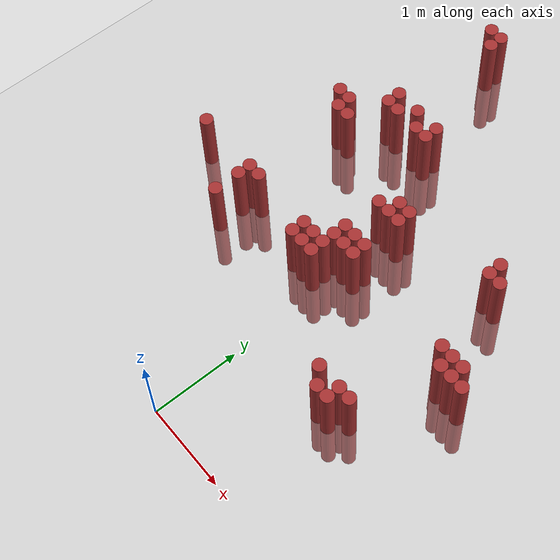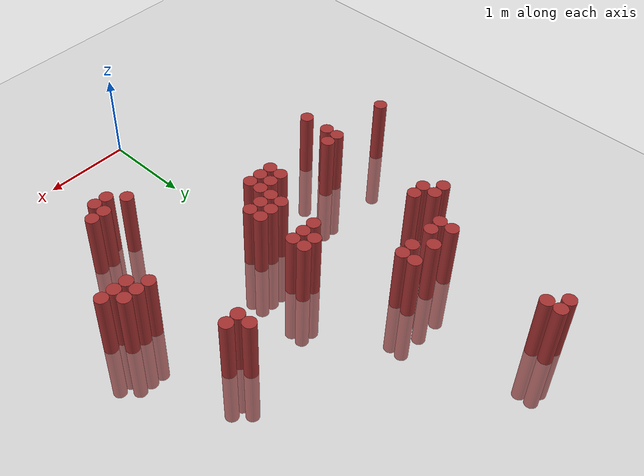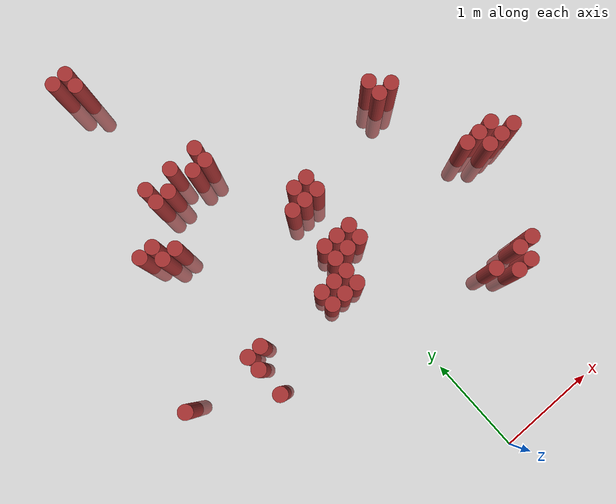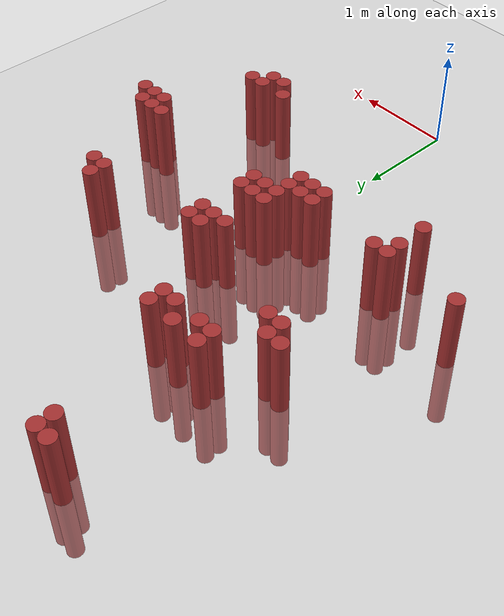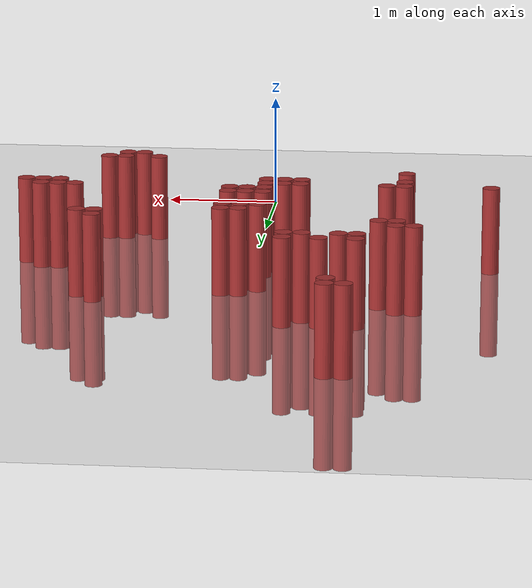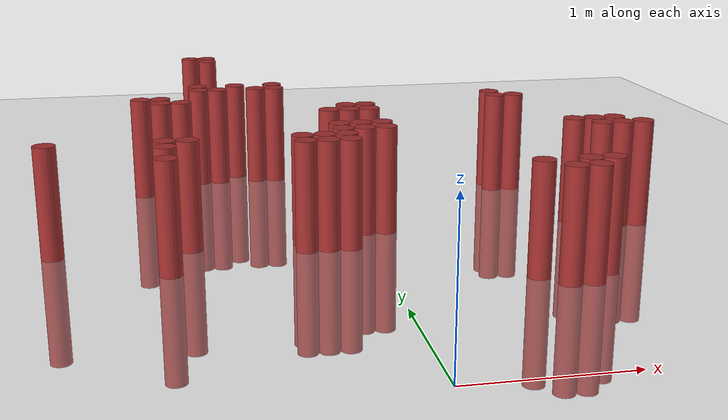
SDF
<sdf version="1.6">
 <world name="default">
  <model name="ground_plane">
   <static>1</static>
   <link name="link">
    <collision name="collision">
     <geometry><plane><normal>0 0 1</normal><size>100 100</size></plane></geometry>
     <surface><friction><ode><mu>100</mu><mu2>50</mu2></ode></friction></surface>
    </collision>
    <visual name="visual">
     <cast_shadows>0</cast_shadows>
     <geometry><plane><normal>0 0 1</normal><size>100 100</size></plane></geometry>
     <material>
      <script><uri>file://media/materials/scripts/gazebo.material</uri><name>Gazebo/Grey</name></script>
     </material>
    </visual>
   </link>
  </model>
  <model name="unit_cylinder_308">
   <static>1</static>
   <pose>-2.075000 2.275000 0.000000 0.000000 0.000000 0.000000</pose>
   <link name="link">
    <inertial>
     <mass>1</mass>
     <inertia><ixx>0.145833</ixx><ixy>0</ixy><ixz>0</ixz><iyy>0.145833</iyy><iyz>0</iyz><izz>0.125</izz></inertia>
    </inertial>
    <collision name="collision">
     <geometry><cylinder><radius>0.075000</radius><length>1.5</length></cylinder></geometry>
    </collision>
    <visual name="visual">
     <geometry><cylinder><radius>0.075000</radius><length>1.5</length></cylinder></geometry>
     <material>
      <ambient>0.648000 0.192000 0.192000 1</ambient>
      <diffuse>0.648000 0.192000 0.192000 1</diffuse>
     </material>
     <material>
      <script><name>Gazebo/Grey</name><uri>file://media/materials/scripts/gazebo.material</uri></script>
     </material>
    </visual>
   </link>
  </model>
  <model name="unit_cylinder_317">
   <static>1</static>
   <pose>-1.475000 3.625000 0.000000 0.000000 0.000000 0.000000</pose>
   <link name="link">
    <inertial>
     <mass>1</mass>
     <inertia><ixx>0.145833</ixx><ixy>0</ixy><ixz>0</ixz><iyy>0.145833</iyy><iyz>0</iyz><izz>0.125</izz></inertia>
    </inertial>
    <collision name="collision">
     <geometry><cylinder><radius>0.075000</radius><length>1.5</length></cylinder></geometry>
    </collision>
    <visual name="visual">
     <geometry><cylinder><radius>0.075000</radius><length>1.5</length></cylinder></geometry>
     <material>
      <ambient>0.648000 0.192000 0.192000 1</ambient>
      <diffuse>0.648000 0.192000 0.192000 1</diffuse>
     </material>
     <material>
      <script><name>Gazebo/Grey</name><uri>file://media/materials/scripts/gazebo.material</uri></script>
     </material>
    </visual>
   </link>
  </model>
  <model name="unit_cylinder_319">
   <static>1</static>
   <pose>-1.325000 1.825000 0.000000 0.000000 0.000000 0.000000</pose>
   <link name="link">
    <inertial>
     <mass>1</mass>
     <inertia><ixx>0.145833</ixx><ixy>0</ixy><ixz>0</ixz><iyy>0.145833</iyy><iyz>0</iyz><izz>0.125</izz></inertia>
    </inertial>
    <collision name="collision">
     <geometry><cylinder><radius>0.075000</radius><length>1.5</length></cylinder></geometry>
    </collision>
    <visual name="visual">
     <geometry><cylinder><radius>0.075000</radius><length>1.5</length></cylinder></geometry>
     <material>
      <ambient>0.648000 0.192000 0.192000 1</ambient>
      <diffuse>0.648000 0.192000 0.192000 1</diffuse>
     </material>
     <material>
      <script><name>Gazebo/Grey</name><uri>file://media/materials/scripts/gazebo.material</uri></script>
     </material>
    </visual>
   </link>
  </model>
  <model name="unit_cylinder_320">
   <static>1</static>
   <pose>-1.325000 2.125000 0.000000 0.000000 0.000000 0.000000</pose>
   <link name="link">
    <inertial>
     <mass>1</mass>
     <inertia><ixx>0.145833</ixx><ixy>0</ixy><ixz>0</ixz><iyy>0.145833</iyy><iyz>0</iyz><izz>0.125</izz></inertia>
    </inertial>
    <collision name="collision">
     <geometry><cylinder><radius>0.075000</radius><length>1.5</length></cylinder></geometry>
    </collision>
    <visual name="visual">
     <geometry><cylinder><radius>0.075000</radius><length>1.5</length></cylinder></geometry>
     <material>
      <ambient>0.648000 0.192000 0.192000 1</ambient>
      <diffuse>0.648000 0.192000 0.192000 1</diffuse>
     </material>
     <material>
      <script><name>Gazebo/Grey</name><uri>file://media/materials/scripts/gazebo.material</uri></script>
     </material>
    </visual>
   </link>
  </model>
  <model name="unit_cylinder_321">
   <static>1</static>
   <pose>-1.325000 2.275000 0.000000 0.000000 0.000000 0.000000</pose>
   <link name="link">
    <inertial>
     <mass>1</mass>
     <inertia><ixx>0.145833</ixx><ixy>0</ixy><ixz>0</ixz><iyy>0.145833</iyy><iyz>0</iyz><izz>0.125</izz></inertia>
    </inertial>
    <collision name="collision">
     <geometry><cylinder><radius>0.075000</radius><length>1.5</length></cylinder></geometry>
    </collision>
    <visual name="visual">
     <geometry><cylinder><radius>0.075000</radius><length>1.5</length></cylinder></geometry>
     <material>
      <ambient>0.648000 0.192000 0.192000 1</ambient>
      <diffuse>0.648000 0.192000 0.192000 1</diffuse>
     </material>
     <material>
      <script><name>Gazebo/Grey</name><uri>file://media/materials/scripts/gazebo.material</uri></script>
     </material>
    </visual>
   </link>
  </model>
  <model name="unit_cylinder_322">
   <static>1</static>
   <pose>-1.325000 3.475000 0.000000 0.000000 0.000000 0.000000</pose>
   <link name="link">
    <inertial>
     <mass>1</mass>
     <inertia><ixx>0.145833</ixx><ixy>0</ixy><ixz>0</ixz><iyy>0.145833</iyy><iyz>0</iyz><izz>0.125</izz></inertia>
    </inertial>
    <collision name="collision">
     <geometry><cylinder><radius>0.075000</radius><length>1.5</length></cylinder></geometry>
    </collision>
    <visual name="visual">
     <geometry><cylinder><radius>0.075000</radius><length>1.5</length></cylinder></geometry>
     <material>
      <ambient>0.648000 0.192000 0.192000 1</ambient>
      <diffuse>0.648000 0.192000 0.192000 1</diffuse>
     </material>
     <material>
      <script><name>Gazebo/Grey</name><uri>file://media/materials/scripts/gazebo.material</uri></script>
     </material>
    </visual>
   </link>
  </model>
  <model name="unit_cylinder_323">
   <static>1</static>
   <pose>-1.325000 3.625000 0.000000 0.000000 0.000000 0.000000</pose>
   <link name="link">
    <inertial>
     <mass>1</mass>
     <inertia><ixx>0.145833</ixx><ixy>0</ixy><ixz>0</ixz><iyy>0.145833</iyy><iyz>0</iyz><izz>0.125</izz></inertia>
    </inertial>
    <collision name="collision">
     <geometry><cylinder><radius>0.075000</radius><length>1.5</length></cylinder></geometry>
    </collision>
    <visual name="visual">
     <geometry><cylinder><radius>0.075000</radius><length>1.5</length></cylinder></geometry>
     <material>
      <ambient>0.648000 0.192000 0.192000 1</ambient>
      <diffuse>0.648000 0.192000 0.192000 1</diffuse>
     </material>
     <material>
      <script><name>Gazebo/Grey</name><uri>file://media/materials/scripts/gazebo.material</uri></script>
     </material>
    </visual>
   </link>
  </model>
  <model name="unit_cylinder_326">
   <static>1</static>
   <pose>-1.175000 2.275000 0.000000 0.000000 0.000000 0.000000</pose>
   <link name="link">
    <inertial>
     <mass>1</mass>
     <inertia><ixx>0.145833</ixx><ixy>0</ixy><ixz>0</ixz><iyy>0.145833</iyy><iyz>0</iyz><izz>0.125</izz></inertia>
    </inertial>
    <collision name="collision">
     <geometry><cylinder><radius>0.075000</radius><length>1.5</length></cylinder></geometry>
    </collision>
    <visual name="visual">
     <geometry><cylinder><radius>0.075000</radius><length>1.5</length></cylinder></geometry>
     <material>
      <ambient>0.648000 0.192000 0.192000 1</ambient>
      <diffuse>0.648000 0.192000 0.192000 1</diffuse>
     </material>
     <material>
      <script><name>Gazebo/Grey</name><uri>file://media/materials/scripts/gazebo.material</uri></script>
     </material>
    </visual>
   </link>
  </model>
  <model name="unit_cylinder_327">
   <static>1</static>
   <pose>-1.175000 3.475000 0.000000 0.000000 0.000000 0.000000</pose>
   <link name="link">
    <inertial>
     <mass>1</mass>
     <inertia><ixx>0.145833</ixx><ixy>0</ixy><ixz>0</ixz><iyy>0.145833</iyy><iyz>0</iyz><izz>0.125</izz></inertia>
    </inertial>
    <collision name="collision">
     <geometry><cylinder><radius>0.075000</radius><length>1.5</length></cylinder></geometry>
    </collision>
    <visual name="visual">
     <geometry><cylinder><radius>0.075000</radius><length>1.5</length></cylinder></geometry>
     <material>
      <ambient>0.648000 0.192000 0.192000 1</ambient>
      <diffuse>0.648000 0.192000 0.192000 1</diffuse>
     </material>
     <material>
      <script><name>Gazebo/Grey</name><uri>file://media/materials/scripts/gazebo.material</uri></script>
     </material>
    </visual>
   </link>
  </model>
  <model name="unit_cylinder_328">
   <static>1</static>
   <pose>-1.025000 3.925000 0.000000 0.000000 0.000000 0.000000</pose>
   <link name="link">
    <inertial>
     <mass>1</mass>
     <inertia><ixx>0.145833</ixx><ixy>0</ixy><ixz>0</ixz><iyy>0.145833</iyy><iyz>0</iyz><izz>0.125</izz></inertia>
    </inertial>
    <collision name="collision">
     <geometry><cylinder><radius>0.075000</radius><length>1.5</length></cylinder></geometry>
    </collision>
    <visual name="visual">
     <geometry><cylinder><radius>0.075000</radius><length>1.5</length></cylinder></geometry>
     <material>
      <ambient>0.648000 0.192000 0.192000 1</ambient>
      <diffuse>0.648000 0.192000 0.192000 1</diffuse>
     </material>
     <material>
      <script><name>Gazebo/Grey</name><uri>file://media/materials/scripts/gazebo.material</uri></script>
     </material>
    </visual>
   </link>
  </model>
  <model name="unit_cylinder_329">
   <static>1</static>
   <pose>-1.025000 4.075000 0.000000 0.000000 0.000000 0.000000</pose>
   <link name="link">
    <inertial>
     <mass>1</mass>
     <inertia><ixx>0.145833</ixx><ixy>0</ixy><ixz>0</ixz><iyy>0.145833</iyy><iyz>0</iyz><izz>0.125</izz></inertia>
    </inertial>
    <collision name="collision">
     <geometry><cylinder><radius>0.075000</radius><length>1.5</length></cylinder></geometry>
    </collision>
    <visual name="visual">
     <geometry><cylinder><radius>0.075000</radius><length>1.5</length></cylinder></geometry>
     <material>
      <ambient>0.648000 0.192000 0.192000 1</ambient>
      <diffuse>0.648000 0.192000 0.192000 1</diffuse>
     </material>
     <material>
      <script><name>Gazebo/Grey</name><uri>file://media/materials/scripts/gazebo.material</uri></script>
     </material>
    </visual>
   </link>
  </model>
  <model name="unit_cylinder_330">
   <static>1</static>
   <pose>-1.025000 5.425000 0.000000 0.000000 0.000000 0.000000</pose>
   <link name="link">
    <inertial>
     <mass>1</mass>
     <inertia><ixx>0.145833</ixx><ixy>0</ixy><ixz>0</ixz><iyy>0.145833</iyy><iyz>0</iyz><izz>0.125</izz></inertia>
    </inertial>
    <collision name="collision">
     <geometry><cylinder><radius>0.075000</radius><length>1.5</length></cylinder></geometry>
    </collision>
    <visual name="visual">
     <geometry><cylinder><radius>0.075000</radius><length>1.5</length></cylinder></geometry>
     <material>
      <ambient>0.648000 0.192000 0.192000 1</ambient>
      <diffuse>0.648000 0.192000 0.192000 1</diffuse>
     </material>
     <material>
      <script><name>Gazebo/Grey</name><uri>file://media/materials/scripts/gazebo.material</uri></script>
     </material>
    </visual>
   </link>
  </model>
  <model name="unit_cylinder_331">
   <static>1</static>
   <pose>-0.875000 3.925000 0.000000 0.000000 0.000000 0.000000</pose>
   <link name="link">
    <inertial>
     <mass>1</mass>
     <inertia><ixx>0.145833</ixx><ixy>0</ixy><ixz>0</ixz><iyy>0.145833</iyy><iyz>0</iyz><izz>0.125</izz></inertia>
    </inertial>
    <collision name="collision">
     <geometry><cylinder><radius>0.075000</radius><length>1.5</length></cylinder></geometry>
    </collision>
    <visual name="visual">
     <geometry><cylinder><radius>0.075000</radius><length>1.5</length></cylinder></geometry>
     <material>
      <ambient>0.648000 0.192000 0.192000 1</ambient>
      <diffuse>0.648000 0.192000 0.192000 1</diffuse>
     </material>
     <material>
      <script><name>Gazebo/Grey</name><uri>file://media/materials/scripts/gazebo.material</uri></script>
     </material>
    </visual>
   </link>
  </model>
  <model name="unit_cylinder_332">
   <static>1</static>
   <pose>-0.875000 5.275000 0.000000 0.000000 0.000000 0.000000</pose>
   <link name="link">
    <inertial>
     <mass>1</mass>
     <inertia><ixx>0.145833</ixx><ixy>0</ixy><ixz>0</ixz><iyy>0.145833</iyy><iyz>0</iyz><izz>0.125</izz></inertia>
    </inertial>
    <collision name="collision">
     <geometry><cylinder><radius>0.075000</radius><length>1.5</length></cylinder></geometry>
    </collision>
    <visual name="visual">
     <geometry><cylinder><radius>0.075000</radius><length>1.5</length></cylinder></geometry>
     <material>
      <ambient>0.648000 0.192000 0.192000 1</ambient>
      <diffuse>0.648000 0.192000 0.192000 1</diffuse>
     </material>
     <material>
      <script><name>Gazebo/Grey</name><uri>file://media/materials/scripts/gazebo.material</uri></script>
     </material>
    </visual>
   </link>
  </model>
  <model name="unit_cylinder_333">
   <static>1</static>
   <pose>-0.875000 5.425000 0.000000 0.000000 0.000000 0.000000</pose>
   <link name="link">
    <inertial>
     <mass>1</mass>
     <inertia><ixx>0.145833</ixx><ixy>0</ixy><ixz>0</ixz><iyy>0.145833</iyy><iyz>0</iyz><izz>0.125</izz></inertia>
    </inertial>
    <collision name="collision">
     <geometry><cylinder><radius>0.075000</radius><length>1.5</length></cylinder></geometry>
    </collision>
    <visual name="visual">
     <geometry><cylinder><radius>0.075000</radius><length>1.5</length></cylinder></geometry>
     <material>
      <ambient>0.648000 0.192000 0.192000 1</ambient>
      <diffuse>0.648000 0.192000 0.192000 1</diffuse>
     </material>
     <material>
      <script><name>Gazebo/Grey</name><uri>file://media/materials/scripts/gazebo.material</uri></script>
     </material>
    </visual>
   </link>
  </model>
  <model name="unit_cylinder_334">
   <static>1</static>
   <pose>-0.725000 4.075000 0.000000 0.000000 0.000000 0.000000</pose>
   <link name="link">
    <inertial>
     <mass>1</mass>
     <inertia><ixx>0.145833</ixx><ixy>0</ixy><ixz>0</ixz><iyy>0.145833</iyy><iyz>0</iyz><izz>0.125</izz></inertia>
    </inertial>
    <collision name="collision">
     <geometry><cylinder><radius>0.075000</radius><length>1.5</length></cylinder></geometry>
    </collision>
    <visual name="visual">
     <geometry><cylinder><radius>0.075000</radius><length>1.5</length></cylinder></geometry>
     <material>
      <ambient>0.648000 0.192000 0.192000 1</ambient>
      <diffuse>0.648000 0.192000 0.192000 1</diffuse>
     </material>
     <material>
      <script><name>Gazebo/Grey</name><uri>file://media/materials/scripts/gazebo.material</uri></script>
     </material>
    </visual>
   </link>
  </model>
  <model name="unit_cylinder_336">
   <static>1</static>
   <pose>-0.575000 3.925000 0.000000 0.000000 0.000000 0.000000</pose>
   <link name="link">
    <inertial>
     <mass>1</mass>
     <inertia><ixx>0.145833</ixx><ixy>0</ixy><ixz>0</ixz><iyy>0.145833</iyy><iyz>0</iyz><izz>0.125</izz></inertia>
    </inertial>
    <collision name="collision">
     <geometry><cylinder><radius>0.075000</radius><length>1.5</length></cylinder></geometry>
    </collision>
    <visual name="visual">
     <geometry><cylinder><radius>0.075000</radius><length>1.5</length></cylinder></geometry>
     <material>
      <ambient>0.648000 0.192000 0.192000 1</ambient>
      <diffuse>0.648000 0.192000 0.192000 1</diffuse>
     </material>
     <material>
      <script><name>Gazebo/Grey</name><uri>file://media/materials/scripts/gazebo.material</uri></script>
     </material>
    </visual>
   </link>
  </model>
  <model name="unit_cylinder_339">
   <static>1</static>
   <pose>-0.425000 2.125000 0.000000 0.000000 0.000000 0.000000</pose>
   <link name="link">
    <inertial>
     <mass>1</mass>
     <inertia><ixx>0.145833</ixx><ixy>0</ixy><ixz>0</ixz><iyy>0.145833</iyy><iyz>0</iyz><izz>0.125</izz></inertia>
    </inertial>
    <collision name="collision">
     <geometry><cylinder><radius>0.075000</radius><length>1.5</length></cylinder></geometry>
    </collision>
    <visual name="visual">
     <geometry><cylinder><radius>0.075000</radius><length>1.5</length></cylinder></geometry>
     <material>
      <ambient>0.648000 0.192000 0.192000 1</ambient>
      <diffuse>0.648000 0.192000 0.192000 1</diffuse>
     </material>
     <material>
      <script><name>Gazebo/Grey</name><uri>file://media/materials/scripts/gazebo.material</uri></script>
     </material>
    </visual>
   </link>
  </model>
  <model name="unit_cylinder_340">
   <static>1</static>
   <pose>-0.425000 2.275000 0.000000 0.000000 0.000000 0.000000</pose>
   <link name="link">
    <inertial>
     <mass>1</mass>
     <inertia><ixx>0.145833</ixx><ixy>0</ixy><ixz>0</ixz><iyy>0.145833</iyy><iyz>0</iyz><izz>0.125</izz></inertia>
    </inertial>
    <collision name="collision">
     <geometry><cylinder><radius>0.075000</radius><length>1.5</length></cylinder></geometry>
    </collision>
    <visual name="visual">
     <geometry><cylinder><radius>0.075000</radius><length>1.5</length></cylinder></geometry>
     <material>
      <ambient>0.648000 0.192000 0.192000 1</ambient>
      <diffuse>0.648000 0.192000 0.192000 1</diffuse>
     </material>
     <material>
      <script><name>Gazebo/Grey</name><uri>file://media/materials/scripts/gazebo.material</uri></script>
     </material>
    </visual>
   </link>
  </model>
  <model name="unit_cylinder_341">
   <static>1</static>
   <pose>-0.425000 3.925000 0.000000 0.000000 0.000000 0.000000</pose>
   <link name="link">
    <inertial>
     <mass>1</mass>
     <inertia><ixx>0.145833</ixx><ixy>0</ixy><ixz>0</ixz><iyy>0.145833</iyy><iyz>0</iyz><izz>0.125</izz></inertia>
    </inertial>
    <collision name="collision">
     <geometry><cylinder><radius>0.075000</radius><length>1.5</length></cylinder></geometry>
    </collision>
    <visual name="visual">
     <geometry><cylinder><radius>0.075000</radius><length>1.5</length></cylinder></geometry>
     <material>
      <ambient>0.648000 0.192000 0.192000 1</ambient>
      <diffuse>0.648000 0.192000 0.192000 1</diffuse>
     </material>
     <material>
      <script><name>Gazebo/Grey</name><uri>file://media/materials/scripts/gazebo.material</uri></script>
     </material>
    </visual>
   </link>
  </model>
  <model name="unit_cylinder_342">
   <static>1</static>
   <pose>-0.425000 4.075000 0.000000 0.000000 0.000000 0.000000</pose>
   <link name="link">
    <inertial>
     <mass>1</mass>
     <inertia><ixx>0.145833</ixx><ixy>0</ixy><ixz>0</ixz><iyy>0.145833</iyy><iyz>0</iyz><izz>0.125</izz></inertia>
    </inertial>
    <collision name="collision">
     <geometry><cylinder><radius>0.075000</radius><length>1.5</length></cylinder></geometry>
    </collision>
    <visual name="visual">
     <geometry><cylinder><radius>0.075000</radius><length>1.5</length></cylinder></geometry>
     <material>
      <ambient>0.648000 0.192000 0.192000 1</ambient>
      <diffuse>0.648000 0.192000 0.192000 1</diffuse>
     </material>
     <material>
      <script><name>Gazebo/Grey</name><uri>file://media/materials/scripts/gazebo.material</uri></script>
     </material>
    </visual>
   </link>
  </model>
  <model name="unit_cylinder_344">
   <static>1</static>
   <pose>-0.275000 2.125000 0.000000 0.000000 0.000000 0.000000</pose>
   <link name="link">
    <inertial>
     <mass>1</mass>
     <inertia><ixx>0.145833</ixx><ixy>0</ixy><ixz>0</ixz><iyy>0.145833</iyy><iyz>0</iyz><izz>0.125</izz></inertia>
    </inertial>
    <collision name="collision">
     <geometry><cylinder><radius>0.075000</radius><length>1.5</length></cylinder></geometry>
    </collision>
    <visual name="visual">
     <geometry><cylinder><radius>0.075000</radius><length>1.5</length></cylinder></geometry>
     <material>
      <ambient>0.648000 0.192000 0.192000 1</ambient>
      <diffuse>0.648000 0.192000 0.192000 1</diffuse>
     </material>
     <material>
      <script><name>Gazebo/Grey</name><uri>file://media/materials/scripts/gazebo.material</uri></script>
     </material>
    </visual>
   </link>
  </model>
  <model name="unit_cylinder_345">
   <static>1</static>
   <pose>-0.275000 2.275000 0.000000 0.000000 0.000000 0.000000</pose>
   <link name="link">
    <inertial>
     <mass>1</mass>
     <inertia><ixx>0.145833</ixx><ixy>0</ixy><ixz>0</ixz><iyy>0.145833</iyy><iyz>0</iyz><izz>0.125</izz></inertia>
    </inertial>
    <collision name="collision">
     <geometry><cylinder><radius>0.075000</radius><length>1.5</length></cylinder></geometry>
    </collision>
    <visual name="visual">
     <geometry><cylinder><radius>0.075000</radius><length>1.5</length></cylinder></geometry>
     <material>
      <ambient>0.648000 0.192000 0.192000 1</ambient>
      <diffuse>0.648000 0.192000 0.192000 1</diffuse>
     </material>
     <material>
      <script><name>Gazebo/Grey</name><uri>file://media/materials/scripts/gazebo.material</uri></script>
     </material>
    </visual>
   </link>
  </model>
  <model name="unit_cylinder_349">
   <static>1</static>
   <pose>-0.125000 2.125000 0.000000 0.000000 0.000000 0.000000</pose>
   <link name="link">
    <inertial>
     <mass>1</mass>
     <inertia><ixx>0.145833</ixx><ixy>0</ixy><ixz>0</ixz><iyy>0.145833</iyy><iyz>0</iyz><izz>0.125</izz></inertia>
    </inertial>
    <collision name="collision">
     <geometry><cylinder><radius>0.075000</radius><length>1.5</length></cylinder></geometry>
    </collision>
    <visual name="visual">
     <geometry><cylinder><radius>0.075000</radius><length>1.5</length></cylinder></geometry>
     <material>
      <ambient>0.648000 0.192000 0.192000 1</ambient>
      <diffuse>0.648000 0.192000 0.192000 1</diffuse>
     </material>
     <material>
      <script><name>Gazebo/Grey</name><uri>file://media/materials/scripts/gazebo.material</uri></script>
     </material>
    </visual>
   </link>
  </model>
  <model name="unit_cylinder_350">
   <static>1</static>
   <pose>-0.125000 2.275000 0.000000 0.000000 0.000000 0.000000</pose>
   <link name="link">
    <inertial>
     <mass>1</mass>
     <inertia><ixx>0.145833</ixx><ixy>0</ixy><ixz>0</ixz><iyy>0.145833</iyy><iyz>0</iyz><izz>0.125</izz></inertia>
    </inertial>
    <collision name="collision">
     <geometry><cylinder><radius>0.075000</radius><length>1.5</length></cylinder></geometry>
    </collision>
    <visual name="visual">
     <geometry><cylinder><radius>0.075000</radius><length>1.5</length></cylinder></geometry>
     <material>
      <ambient>0.648000 0.192000 0.192000 1</ambient>
      <diffuse>0.648000 0.192000 0.192000 1</diffuse>
     </material>
     <material>
      <script><name>Gazebo/Grey</name><uri>file://media/materials/scripts/gazebo.material</uri></script>
     </material>
    </visual>
   </link>
  </model>
  <model name="unit_cylinder_351">
   <static>1</static>
   <pose>-0.125000 2.425000 0.000000 0.000000 0.000000 0.000000</pose>
   <link name="link">
    <inertial>
     <mass>1</mass>
     <inertia><ixx>0.145833</ixx><ixy>0</ixy><ixz>0</ixz><iyy>0.145833</iyy><iyz>0</iyz><izz>0.125</izz></inertia>
    </inertial>
    <collision name="collision">
     <geometry><cylinder><radius>0.075000</radius><length>1.5</length></cylinder></geometry>
    </collision>
    <visual name="visual">
     <geometry><cylinder><radius>0.075000</radius><length>1.5</length></cylinder></geometry>
     <material>
      <ambient>0.648000 0.192000 0.192000 1</ambient>
      <diffuse>0.648000 0.192000 0.192000 1</diffuse>
     </material>
     <material>
      <script><name>Gazebo/Grey</name><uri>file://media/materials/scripts/gazebo.material</uri></script>
     </material>
    </visual>
   </link>
  </model>
  <model name="unit_cylinder_352">
   <static>1</static>
   <pose>-0.125000 2.575000 0.000000 0.000000 0.000000 0.000000</pose>
   <link name="link">
    <inertial>
     <mass>1</mass>
     <inertia><ixx>0.145833</ixx><ixy>0</ixy><ixz>0</ixz><iyy>0.145833</iyy><iyz>0</iyz><izz>0.125</izz></inertia>
    </inertial>
    <collision name="collision">
     <geometry><cylinder><radius>0.075000</radius><length>1.5</length></cylinder></geometry>
    </collision>
    <visual name="visual">
     <geometry><cylinder><radius>0.075000</radius><length>1.5</length></cylinder></geometry>
     <material>
      <ambient>0.648000 0.192000 0.192000 1</ambient>
      <diffuse>0.648000 0.192000 0.192000 1</diffuse>
     </material>
     <material>
      <script><name>Gazebo/Grey</name><uri>file://media/materials/scripts/gazebo.material</uri></script>
     </material>
    </visual>
   </link>
  </model>
  <model name="unit_cylinder_353">
   <static>1</static>
   <pose>-0.125000 3.025000 0.000000 0.000000 0.000000 0.000000</pose>
   <link name="link">
    <inertial>
     <mass>1</mass>
     <inertia><ixx>0.145833</ixx><ixy>0</ixy><ixz>0</ixz><iyy>0.145833</iyy><iyz>0</iyz><izz>0.125</izz></inertia>
    </inertial>
    <collision name="collision">
     <geometry><cylinder><radius>0.075000</radius><length>1.5</length></cylinder></geometry>
    </collision>
    <visual name="visual">
     <geometry><cylinder><radius>0.075000</radius><length>1.5</length></cylinder></geometry>
     <material>
      <ambient>0.648000 0.192000 0.192000 1</ambient>
      <diffuse>0.648000 0.192000 0.192000 1</diffuse>
     </material>
     <material>
      <script><name>Gazebo/Grey</name><uri>file://media/materials/scripts/gazebo.material</uri></script>
     </material>
    </visual>
   </link>
  </model>
  <model name="unit_cylinder_356">
   <static>1</static>
   <pose>0.025000 2.425000 0.000000 0.000000 0.000000 0.000000</pose>
   <link name="link">
    <inertial>
     <mass>1</mass>
     <inertia><ixx>0.145833</ixx><ixy>0</ixy><ixz>0</ixz><iyy>0.145833</iyy><iyz>0</iyz><izz>0.125</izz></inertia>
    </inertial>
    <collision name="collision">
     <geometry><cylinder><radius>0.075000</radius><length>1.5</length></cylinder></geometry>
    </collision>
    <visual name="visual">
     <geometry><cylinder><radius>0.075000</radius><length>1.5</length></cylinder></geometry>
     <material>
      <ambient>0.648000 0.192000 0.192000 1</ambient>
      <diffuse>0.648000 0.192000 0.192000 1</diffuse>
     </material>
     <material>
      <script><name>Gazebo/Grey</name><uri>file://media/materials/scripts/gazebo.material</uri></script>
     </material>
    </visual>
   </link>
  </model>
  <model name="unit_cylinder_357">
   <static>1</static>
   <pose>0.025000 2.575000 0.000000 0.000000 0.000000 0.000000</pose>
   <link name="link">
    <inertial>
     <mass>1</mass>
     <inertia><ixx>0.145833</ixx><ixy>0</ixy><ixz>0</ixz><iyy>0.145833</iyy><iyz>0</iyz><izz>0.125</izz></inertia>
    </inertial>
    <collision name="collision">
     <geometry><cylinder><radius>0.075000</radius><length>1.5</length></cylinder></geometry>
    </collision>
    <visual name="visual">
     <geometry><cylinder><radius>0.075000</radius><length>1.5</length></cylinder></geometry>
     <material>
      <ambient>0.648000 0.192000 0.192000 1</ambient>
      <diffuse>0.648000 0.192000 0.192000 1</diffuse>
     </material>
     <material>
      <script><name>Gazebo/Grey</name><uri>file://media/materials/scripts/gazebo.material</uri></script>
     </material>
    </visual>
   </link>
  </model>
  <model name="unit_cylinder_358">
   <static>1</static>
   <pose>0.025000 3.025000 0.000000 0.000000 0.000000 0.000000</pose>
   <link name="link">
    <inertial>
     <mass>1</mass>
     <inertia><ixx>0.145833</ixx><ixy>0</ixy><ixz>0</ixz><iyy>0.145833</iyy><iyz>0</iyz><izz>0.125</izz></inertia>
    </inertial>
    <collision name="collision">
     <geometry><cylinder><radius>0.075000</radius><length>1.5</length></cylinder></geometry>
    </collision>
    <visual name="visual">
     <geometry><cylinder><radius>0.075000</radius><length>1.5</length></cylinder></geometry>
     <material>
      <ambient>0.648000 0.192000 0.192000 1</ambient>
      <diffuse>0.648000 0.192000 0.192000 1</diffuse>
     </material>
     <material>
      <script><name>Gazebo/Grey</name><uri>file://media/materials/scripts/gazebo.material</uri></script>
     </material>
    </visual>
   </link>
  </model>
  <model name="unit_cylinder_359">
   <static>1</static>
   <pose>0.025000 3.175000 0.000000 0.000000 0.000000 0.000000</pose>
   <link name="link">
    <inertial>
     <mass>1</mass>
     <inertia><ixx>0.145833</ixx><ixy>0</ixy><ixz>0</ixz><iyy>0.145833</iyy><iyz>0</iyz><izz>0.125</izz></inertia>
    </inertial>
    <collision name="collision">
     <geometry><cylinder><radius>0.075000</radius><length>1.5</length></cylinder></geometry>
    </collision>
    <visual name="visual">
     <geometry><cylinder><radius>0.075000</radius><length>1.5</length></cylinder></geometry>
     <material>
      <ambient>0.648000 0.192000 0.192000 1</ambient>
      <diffuse>0.648000 0.192000 0.192000 1</diffuse>
     </material>
     <material>
      <script><name>Gazebo/Grey</name><uri>file://media/materials/scripts/gazebo.material</uri></script>
     </material>
    </visual>
   </link>
  </model>
  <model name="unit_cylinder_360">
   <static>1</static>
   <pose>0.175000 2.425000 0.000000 0.000000 0.000000 0.000000</pose>
   <link name="link">
    <inertial>
     <mass>1</mass>
     <inertia><ixx>0.145833</ixx><ixy>0</ixy><ixz>0</ixz><iyy>0.145833</iyy><iyz>0</iyz><izz>0.125</izz></inertia>
    </inertial>
    <collision name="collision">
     <geometry><cylinder><radius>0.075000</radius><length>1.5</length></cylinder></geometry>
    </collision>
    <visual name="visual">
     <geometry><cylinder><radius>0.075000</radius><length>1.5</length></cylinder></geometry>
     <material>
      <ambient>0.648000 0.192000 0.192000 1</ambient>
      <diffuse>0.648000 0.192000 0.192000 1</diffuse>
     </material>
     <material>
      <script><name>Gazebo/Grey</name><uri>file://media/materials/scripts/gazebo.material</uri></script>
     </material>
    </visual>
   </link>
  </model>
  <model name="unit_cylinder_361">
   <static>1</static>
   <pose>0.175000 2.575000 0.000000 0.000000 0.000000 0.000000</pose>
   <link name="link">
    <inertial>
     <mass>1</mass>
     <inertia><ixx>0.145833</ixx><ixy>0</ixy><ixz>0</ixz><iyy>0.145833</iyy><iyz>0</iyz><izz>0.125</izz></inertia>
    </inertial>
    <collision name="collision">
     <geometry><cylinder><radius>0.075000</radius><length>1.5</length></cylinder></geometry>
    </collision>
    <visual name="visual">
     <geometry><cylinder><radius>0.075000</radius><length>1.5</length></cylinder></geometry>
     <material>
      <ambient>0.648000 0.192000 0.192000 1</ambient>
      <diffuse>0.648000 0.192000 0.192000 1</diffuse>
     </material>
     <material>
      <script><name>Gazebo/Grey</name><uri>file://media/materials/scripts/gazebo.material</uri></script>
     </material>
    </visual>
   </link>
  </model>
  <model name="unit_cylinder_362">
   <static>1</static>
   <pose>0.175000 3.025000 0.000000 0.000000 0.000000 0.000000</pose>
   <link name="link">
    <inertial>
     <mass>1</mass>
     <inertia><ixx>0.145833</ixx><ixy>0</ixy><ixz>0</ixz><iyy>0.145833</iyy><iyz>0</iyz><izz>0.125</izz></inertia>
    </inertial>
    <collision name="collision">
     <geometry><cylinder><radius>0.075000</radius><length>1.5</length></cylinder></geometry>
    </collision>
    <visual name="visual">
     <geometry><cylinder><radius>0.075000</radius><length>1.5</length></cylinder></geometry>
     <material>
      <ambient>0.648000 0.192000 0.192000 1</ambient>
      <diffuse>0.648000 0.192000 0.192000 1</diffuse>
     </material>
     <material>
      <script><name>Gazebo/Grey</name><uri>file://media/materials/scripts/gazebo.material</uri></script>
     </material>
    </visual>
   </link>
  </model>
  <model name="unit_cylinder_363">
   <static>1</static>
   <pose>0.175000 3.175000 0.000000 0.000000 0.000000 0.000000</pose>
   <link name="link">
    <inertial>
     <mass>1</mass>
     <inertia><ixx>0.145833</ixx><ixy>0</ixy><ixz>0</ixz><iyy>0.145833</iyy><iyz>0</iyz><izz>0.125</izz></inertia>
    </inertial>
    <collision name="collision">
     <geometry><cylinder><radius>0.075000</radius><length>1.5</length></cylinder></geometry>
    </collision>
    <visual name="visual">
     <geometry><cylinder><radius>0.075000</radius><length>1.5</length></cylinder></geometry>
     <material>
      <ambient>0.648000 0.192000 0.192000 1</ambient>
      <diffuse>0.648000 0.192000 0.192000 1</diffuse>
     </material>
     <material>
      <script><name>Gazebo/Grey</name><uri>file://media/materials/scripts/gazebo.material</uri></script>
     </material>
    </visual>
   </link>
  </model>
  <model name="unit_cylinder_364">
   <static>1</static>
   <pose>0.925000 1.375000 0.000000 0.000000 0.000000 0.000000</pose>
   <link name="link">
    <inertial>
     <mass>1</mass>
     <inertia><ixx>0.145833</ixx><ixy>0</ixy><ixz>0</ixz><iyy>0.145833</iyy><iyz>0</iyz><izz>0.125</izz></inertia>
    </inertial>
    <collision name="collision">
     <geometry><cylinder><radius>0.075000</radius><length>1.5</length></cylinder></geometry>
    </collision>
    <visual name="visual">
     <geometry><cylinder><radius>0.075000</radius><length>1.5</length></cylinder></geometry>
     <material>
      <ambient>0.648000 0.192000 0.192000 1</ambient>
      <diffuse>0.648000 0.192000 0.192000 1</diffuse>
     </material>
     <material>
      <script><name>Gazebo/Grey</name><uri>file://media/materials/scripts/gazebo.material</uri></script>
     </material>
    </visual>
   </link>
  </model>
  <model name="unit_cylinder_365">
   <static>1</static>
   <pose>1.075000 1.225000 0.000000 0.000000 0.000000 0.000000</pose>
   <link name="link">
    <inertial>
     <mass>1</mass>
     <inertia><ixx>0.145833</ixx><ixy>0</ixy><ixz>0</ixz><iyy>0.145833</iyy><iyz>0</iyz><izz>0.125</izz></inertia>
    </inertial>
    <collision name="collision">
     <geometry><cylinder><radius>0.075000</radius><length>1.5</length></cylinder></geometry>
    </collision>
    <visual name="visual">
     <geometry><cylinder><radius>0.075000</radius><length>1.5</length></cylinder></geometry>
     <material>
      <ambient>0.648000 0.192000 0.192000 1</ambient>
      <diffuse>0.648000 0.192000 0.192000 1</diffuse>
     </material>
     <material>
      <script><name>Gazebo/Grey</name><uri>file://media/materials/scripts/gazebo.material</uri></script>
     </material>
    </visual>
   </link>
  </model>
  <model name="unit_cylinder_366">
   <static>1</static>
   <pose>1.225000 1.225000 0.000000 0.000000 0.000000 0.000000</pose>
   <link name="link">
    <inertial>
     <mass>1</mass>
     <inertia><ixx>0.145833</ixx><ixy>0</ixy><ixz>0</ixz><iyy>0.145833</iyy><iyz>0</iyz><izz>0.125</izz></inertia>
    </inertial>
    <collision name="collision">
     <geometry><cylinder><radius>0.075000</radius><length>1.5</length></cylinder></geometry>
    </collision>
    <visual name="visual">
     <geometry><cylinder><radius>0.075000</radius><length>1.5</length></cylinder></geometry>
     <material>
      <ambient>0.648000 0.192000 0.192000 1</ambient>
      <diffuse>0.648000 0.192000 0.192000 1</diffuse>
     </material>
     <material>
      <script><name>Gazebo/Grey</name><uri>file://media/materials/scripts/gazebo.material</uri></script>
     </material>
    </visual>
   </link>
  </model>
  <model name="unit_cylinder_367">
   <static>1</static>
   <pose>1.225000 1.375000 0.000000 0.000000 0.000000 0.000000</pose>
   <link name="link">
    <inertial>
     <mass>1</mass>
     <inertia><ixx>0.145833</ixx><ixy>0</ixy><ixz>0</ixz><iyy>0.145833</iyy><iyz>0</iyz><izz>0.125</izz></inertia>
    </inertial>
    <collision name="collision">
     <geometry><cylinder><radius>0.075000</radius><length>1.5</length></cylinder></geometry>
    </collision>
    <visual name="visual">
     <geometry><cylinder><radius>0.075000</radius><length>1.5</length></cylinder></geometry>
     <material>
      <ambient>0.648000 0.192000 0.192000 1</ambient>
      <diffuse>0.648000 0.192000 0.192000 1</diffuse>
     </material>
     <material>
      <script><name>Gazebo/Grey</name><uri>file://media/materials/scripts/gazebo.material</uri></script>
     </material>
    </visual>
   </link>
  </model>
  <model name="unit_cylinder_368">
   <static>1</static>
   <pose>1.225000 3.325000 0.000000 0.000000 0.000000 0.000000</pose>
   <link name="link">
    <inertial>
     <mass>1</mass>
     <inertia><ixx>0.145833</ixx><ixy>0</ixy><ixz>0</ixz><iyy>0.145833</iyy><iyz>0</iyz><izz>0.125</izz></inertia>
    </inertial>
    <collision name="collision">
     <geometry><cylinder><radius>0.075000</radius><length>1.5</length></cylinder></geometry>
    </collision>
    <visual name="visual">
     <geometry><cylinder><radius>0.075000</radius><length>1.5</length></cylinder></geometry>
     <material>
      <ambient>0.648000 0.192000 0.192000 1</ambient>
      <diffuse>0.648000 0.192000 0.192000 1</diffuse>
     </material>
     <material>
      <script><name>Gazebo/Grey</name><uri>file://media/materials/scripts/gazebo.material</uri></script>
     </material>
    </visual>
   </link>
  </model>
  <model name="unit_cylinder_369">
   <static>1</static>
   <pose>1.225000 3.475000 0.000000 0.000000 0.000000 0.000000</pose>
   <link name="link">
    <inertial>
     <mass>1</mass>
     <inertia><ixx>0.145833</ixx><ixy>0</ixy><ixz>0</ixz><iyy>0.145833</iyy><iyz>0</iyz><izz>0.125</izz></inertia>
    </inertial>
    <collision name="collision">
     <geometry><cylinder><radius>0.075000</radius><length>1.5</length></cylinder></geometry>
    </collision>
    <visual name="visual">
     <geometry><cylinder><radius>0.075000</radius><length>1.5</length></cylinder></geometry>
     <material>
      <ambient>0.648000 0.192000 0.192000 1</ambient>
      <diffuse>0.648000 0.192000 0.192000 1</diffuse>
     </material>
     <material>
      <script><name>Gazebo/Grey</name><uri>file://media/materials/scripts/gazebo.material</uri></script>
     </material>
    </visual>
   </link>
  </model>
  <model name="unit_cylinder_370">
   <static>1</static>
   <pose>1.375000 1.375000 0.000000 0.000000 0.000000 0.000000</pose>
   <link name="link">
    <inertial>
     <mass>1</mass>
     <inertia><ixx>0.145833</ixx><ixy>0</ixy><ixz>0</ixz><iyy>0.145833</iyy><iyz>0</iyz><izz>0.125</izz></inertia>
    </inertial>
    <collision name="collision">
     <geometry><cylinder><radius>0.075000</radius><length>1.5</length></cylinder></geometry>
    </collision>
    <visual name="visual">
     <geometry><cylinder><radius>0.075000</radius><length>1.5</length></cylinder></geometry>
     <material>
      <ambient>0.648000 0.192000 0.192000 1</ambient>
      <diffuse>0.648000 0.192000 0.192000 1</diffuse>
     </material>
     <material>
      <script><name>Gazebo/Grey</name><uri>file://media/materials/scripts/gazebo.material</uri></script>
     </material>
    </visual>
   </link>
  </model>
  <model name="unit_cylinder_371">
   <static>1</static>
   <pose>1.375000 3.325000 0.000000 0.000000 0.000000 0.000000</pose>
   <link name="link">
    <inertial>
     <mass>1</mass>
     <inertia><ixx>0.145833</ixx><ixy>0</ixy><ixz>0</ixz><iyy>0.145833</iyy><iyz>0</iyz><izz>0.125</izz></inertia>
    </inertial>
    <collision name="collision">
     <geometry><cylinder><radius>0.075000</radius><length>1.5</length></cylinder></geometry>
    </collision>
    <visual name="visual">
     <geometry><cylinder><radius>0.075000</radius><length>1.5</length></cylinder></geometry>
     <material>
      <ambient>0.648000 0.192000 0.192000 1</ambient>
      <diffuse>0.648000 0.192000 0.192000 1</diffuse>
     </material>
     <material>
      <script><name>Gazebo/Grey</name><uri>file://media/materials/scripts/gazebo.material</uri></script>
     </material>
    </visual>
   </link>
  </model>
  <model name="unit_cylinder_373">
   <static>1</static>
   <pose>1.525000 2.425000 0.000000 0.000000 0.000000 0.000000</pose>
   <link name="link">
    <inertial>
     <mass>1</mass>
     <inertia><ixx>0.145833</ixx><ixy>0</ixy><ixz>0</ixz><iyy>0.145833</iyy><iyz>0</iyz><izz>0.125</izz></inertia>
    </inertial>
    <collision name="collision">
     <geometry><cylinder><radius>0.075000</radius><length>1.5</length></cylinder></geometry>
    </collision>
    <visual name="visual">
     <geometry><cylinder><radius>0.075000</radius><length>1.5</length></cylinder></geometry>
     <material>
      <ambient>0.648000 0.192000 0.192000 1</ambient>
      <diffuse>0.648000 0.192000 0.192000 1</diffuse>
     </material>
     <material>
      <script><name>Gazebo/Grey</name><uri>file://media/materials/scripts/gazebo.material</uri></script>
     </material>
    </visual>
   </link>
  </model>
  <model name="unit_cylinder_374">
   <static>1</static>
   <pose>1.675000 2.275000 0.000000 0.000000 0.000000 0.000000</pose>
   <link name="link">
    <inertial>
     <mass>1</mass>
     <inertia><ixx>0.145833</ixx><ixy>0</ixy><ixz>0</ixz><iyy>0.145833</iyy><iyz>0</iyz><izz>0.125</izz></inertia>
    </inertial>
    <collision name="collision">
     <geometry><cylinder><radius>0.075000</radius><length>1.5</length></cylinder></geometry>
    </collision>
    <visual name="visual">
     <geometry><cylinder><radius>0.075000</radius><length>1.5</length></cylinder></geometry>
     <material>
      <ambient>0.648000 0.192000 0.192000 1</ambient>
      <diffuse>0.648000 0.192000 0.192000 1</diffuse>
     </material>
     <material>
      <script><name>Gazebo/Grey</name><uri>file://media/materials/scripts/gazebo.material</uri></script>
     </material>
    </visual>
   </link>
  </model>
  <model name="unit_cylinder_375">
   <static>1</static>
   <pose>1.675000 2.425000 0.000000 0.000000 0.000000 0.000000</pose>
   <link name="link">
    <inertial>
     <mass>1</mass>
     <inertia><ixx>0.145833</ixx><ixy>0</ixy><ixz>0</ixz><iyy>0.145833</iyy><iyz>0</iyz><izz>0.125</izz></inertia>
    </inertial>
    <collision name="collision">
     <geometry><cylinder><radius>0.075000</radius><length>1.5</length></cylinder></geometry>
    </collision>
    <visual name="visual">
     <geometry><cylinder><radius>0.075000</radius><length>1.5</length></cylinder></geometry>
     <material>
      <ambient>0.648000 0.192000 0.192000 1</ambient>
      <diffuse>0.648000 0.192000 0.192000 1</diffuse>
     </material>
     <material>
      <script><name>Gazebo/Grey</name><uri>file://media/materials/scripts/gazebo.material</uri></script>
     </material>
    </visual>
   </link>
  </model>
  <model name="unit_cylinder_376">
   <static>1</static>
   <pose>1.825000 2.275000 0.000000 0.000000 0.000000 0.000000</pose>
   <link name="link">
    <inertial>
     <mass>1</mass>
     <inertia><ixx>0.145833</ixx><ixy>0</ixy><ixz>0</ixz><iyy>0.145833</iyy><iyz>0</iyz><izz>0.125</izz></inertia>
    </inertial>
    <collision name="collision">
     <geometry><cylinder><radius>0.075000</radius><length>1.5</length></cylinder></geometry>
    </collision>
    <visual name="visual">
     <geometry><cylinder><radius>0.075000</radius><length>1.5</length></cylinder></geometry>
     <material>
      <ambient>0.648000 0.192000 0.192000 1</ambient>
      <diffuse>0.648000 0.192000 0.192000 1</diffuse>
     </material>
     <material>
      <script><name>Gazebo/Grey</name><uri>file://media/materials/scripts/gazebo.material</uri></script>
     </material>
    </visual>
   </link>
  </model>
  <model name="unit_cylinder_377">
   <static>1</static>
   <pose>1.825000 2.425000 0.000000 0.000000 0.000000 0.000000</pose>
   <link name="link">
    <inertial>
     <mass>1</mass>
     <inertia><ixx>0.145833</ixx><ixy>0</ixy><ixz>0</ixz><iyy>0.145833</iyy><iyz>0</iyz><izz>0.125</izz></inertia>
    </inertial>
    <collision name="collision">
     <geometry><cylinder><radius>0.075000</radius><length>1.5</length></cylinder></geometry>
    </collision>
    <visual name="visual">
     <geometry><cylinder><radius>0.075000</radius><length>1.5</length></cylinder></geometry>
     <material>
      <ambient>0.648000 0.192000 0.192000 1</ambient>
      <diffuse>0.648000 0.192000 0.192000 1</diffuse>
     </material>
     <material>
      <script><name>Gazebo/Grey</name><uri>file://media/materials/scripts/gazebo.material</uri></script>
     </material>
    </visual>
   </link>
  </model>
  <model name="unit_cylinder_378">
   <static>1</static>
   <pose>1.975000 2.275000 0.000000 0.000000 0.000000 0.000000</pose>
   <link name="link">
    <inertial>
     <mass>1</mass>
     <inertia><ixx>0.145833</ixx><ixy>0</ixy><ixz>0</ixz><iyy>0.145833</iyy><iyz>0</iyz><izz>0.125</izz></inertia>
    </inertial>
    <collision name="collision">
     <geometry><cylinder><radius>0.075000</radius><length>1.5</length></cylinder></geometry>
    </collision>
    <visual name="visual">
     <geometry><cylinder><radius>0.075000</radius><length>1.5</length></cylinder></geometry>
     <material>
      <ambient>0.648000 0.192000 0.192000 1</ambient>
      <diffuse>0.648000 0.192000 0.192000 1</diffuse>
     </material>
     <material>
      <script><name>Gazebo/Grey</name><uri>file://media/materials/scripts/gazebo.material</uri></script>
     </material>
    </visual>
   </link>
  </model>
 </world>
</sdf>
